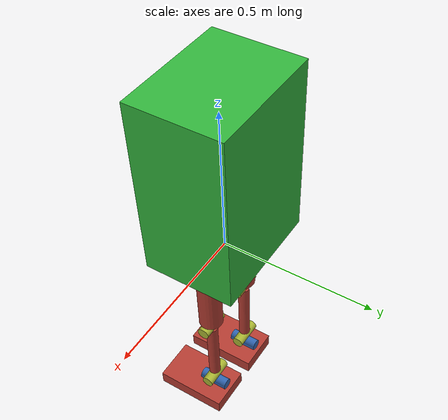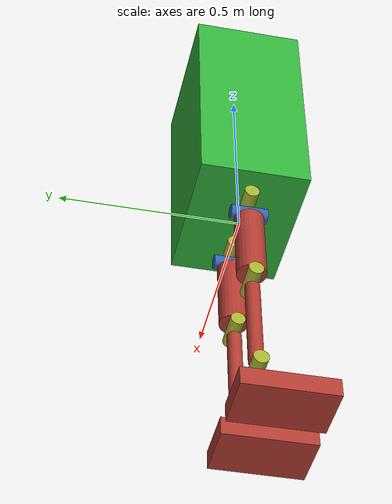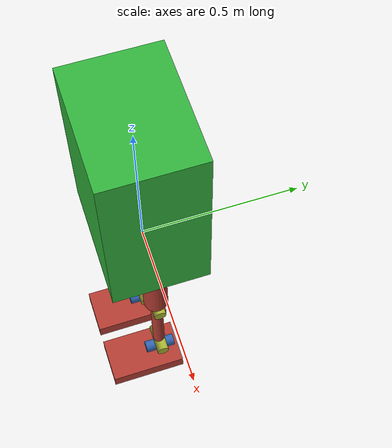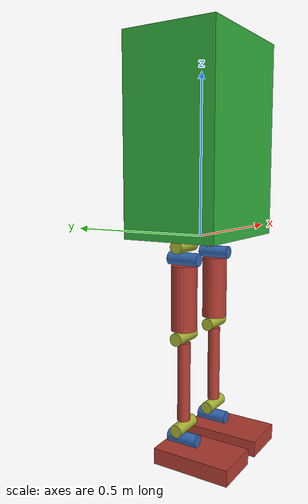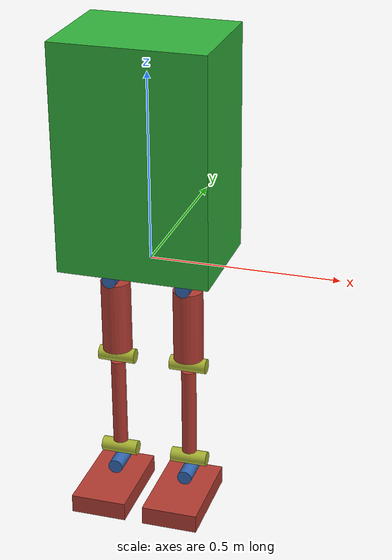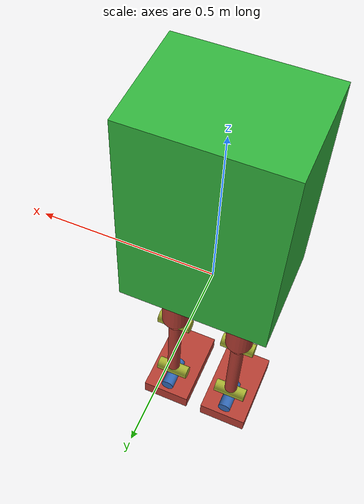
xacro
<?xml version="1.0"?>
<robot xmlns:xacro="http://www.ros.org/wiki/xacro" name="biped_test">

    <xacro:include filename="$(find biped_description)/urdf/materials.urdf.xacro"/>
    <xacro:include filename="$(find biped_description)/urdf/inertials.urdf.xacro"/>

    <!-- All variable xacro macros -->>

    <xacro:property name="rho_Fe" value="7874.0"/>

    <xacro:property name="body_w" value="0.40"/>
    <xacro:property name="body_d" value="0.30"/>
    <xacro:property name="body_h" value="0.60"/>

    <xacro:property name="leg_upper_r" value="0.04"/>
    <xacro:property name="leg_upper_l" value="0.20"/>

    <xacro:property name="leg_lower_r" value="0.02"/>
    <xacro:property name="leg_lower_l" value="0.25"/>

    <xacro:property name="foot_w" value="0.15"/>
    <xacro:property name="foot_d" value="0.25"/>
    <xacro:property name="foot_h" value="0.05"/>

    <xacro:property name="upper_leg_effort" value="6.5"/>
    <xacro:property name="upper_leg_velocity" value="10"/>
    <xacro:property name="lower_leg_effort" value="6.5"/>
    <xacro:property name="lower_leg_velocity" value="10"/>

    <xacro:property name="joint_cylinder_r" value="0.02"/>
    <xacro:property name="joint_cylinder_l" value="0.1"/>

    <!-- All derived xacro macros -->>
    <xacro:property name="body_z" value="${
        body_h/2 +
        leg_upper_l +
        leg_lower_l +
        foot_h
    }"/>

    <!-- All links and joints -->>

    <link name="base_link">
    </link>

    <link name="body">
        <xacro:square_inertial rho="${rho_Fe}" w="${body_w}" d="${body_d}" h="${body_h}"/>
        <visual>
            <geometry>
                <box size="${body_w} ${body_d} ${body_h}"/>
            </geometry>
            <origin rpy="0 0 0" xyz="0 0 ${body_h/2}"/>
            <material name="green"/>
        </visual>
        <collision>
            <geometry>
                <box size="${body_w} ${body_d} ${body_h}"/>
            </geometry>
            <origin rpy="0 0 0" xyz="0 0 ${body_h/2}"/>
        </collision>
    </link>

    <joint name="base_link_to_body" type="fixed">
        <parent link="base_link"/>
        <child link="body"/>
        <origin xyz="0 0 0"/>
    </joint>

    <link name="left_leg_upper_joint_x">
        <xacro:cylinder_inertial rho="${rho_Fe}" r="${joint_cylinder_r}" l="${joint_cylinder_l}"/>
        <visual>
            <geometry>
                <cylinder length="${joint_cylinder_l}" radius="${joint_cylinder_r}"/>
            </geometry>
            <origin xyz=" 0 0 -${joint_cylinder_r} " rpy="0 ${pi/2} 0"/>
            <material name="yellow"/>
        </visual>
        <collision>
            <geometry>
                <cylinder length="${joint_cylinder_l}" radius="${joint_cylinder_r}"/>
            </geometry>
            <origin xyz=" 0 0 -${joint_cylinder_r} " rpy="0 ${pi/2} 0"/>
        </collision>
    </link>

    <link name="right_leg_upper_joint_x">
    <xacro:cylinder_inertial rho="${rho_Fe}" r="${joint_cylinder_r}" l="${joint_cylinder_l}"/>
        <visual>
            <geometry>
                <cylinder length="${joint_cylinder_l}" radius="${joint_cylinder_r}"/>
            </geometry>
            <origin xyz="0 0 -${joint_cylinder_r}" rpy="0 ${pi/2} 0"/>
            <material name="yellow"/>
        </visual>
        <collision>
            <geometry>
                <cylinder length="${joint_cylinder_l}" radius="${joint_cylinder_r}"/>
            </geometry>
            <origin xyz="0 0 -${joint_cylinder_r}" rpy="0 ${pi/2} 0"/>
        </collision>
    </link>

    <joint name="body_to_left_leg_upper_joint_x" type="revolute">
        <parent link="body"/>
        <child link="left_leg_upper_joint_x"/>
        <origin xyz="${body_w/4} 0 0"/>

        <axis xyz="1 0 0"/>
        <limit upper="${pi/2}" lower="-${pi/2}" effort="${upper_leg_effort}" velocity="${upper_leg_velocity}"/>
    </joint>

    <joint name="body_to_right_leg_upper_joint_x" type="revolute">
        <parent link="body"/>
        <child link="right_leg_upper_joint_x"/>
        <origin xyz="-${body_w/4} 0 0"/>

        <axis xyz="1 0 0"/>
        <limit upper="${pi/2}" lower="-${pi/2}" effort="${upper_leg_effort}" velocity="${upper_leg_velocity}"/>
    </joint>

    <link name="left_leg_upper_joint_y">
        <xacro:cylinder_inertial rho="${rho_Fe}" r="${joint_cylinder_r}" l="${joint_cylinder_l}"/>
        <visual>
            <geometry>
                <cylinder length="${joint_cylinder_l}" radius="${joint_cylinder_r}"/>
            </geometry>
            <origin xyz="0 0 -${joint_cylinder_r}" rpy="0 ${pi/2} ${pi/2}"/>
            <material name="blue"/>
        </visual>
        <collision>
            <geometry>
                <cylinder length="${joint_cylinder_l}" radius="${joint_cylinder_r}"/>
            </geometry>
            <origin xyz="0 0 -${joint_cylinder_r}" rpy="0 ${pi/2} ${pi/2}"/>
        </collision>
    </link>

    <link name="right_leg_upper_joint_y">
        <xacro:cylinder_inertial rho="${rho_Fe}" r="${joint_cylinder_r}" l="${joint_cylinder_l}"/>
        <visual>
            <geometry>
                <cylinder length="${joint_cylinder_l}" radius="${joint_cylinder_r}"/>
            </geometry>
            <origin xyz="0 0 -${joint_cylinder_r}" rpy="0 ${pi/2} ${pi/2}"/>
            <material name="blue"/>
        </visual>
        <collision>
            <geometry>
                <cylinder length="${joint_cylinder_l}" radius="${joint_cylinder_r}"/>
            </geometry>
            <origin xyz="0 0 -${joint_cylinder_r}" rpy="0 ${pi/2} ${pi/2}"/>
        </collision>
    </link>

    <joint name="left_leg_upper_joint_x_to_left_leg_upper_joint_y" type="revolute">
        <parent link="left_leg_upper_joint_x"/>
        <child link="left_leg_upper_joint_y"/>
        <origin xyz="0 0 -${joint_cylinder_r*2}"/>

        <axis xyz="0 1 0"/>
        <limit upper="${pi/2}" lower="-${pi/2}" effort="${upper_leg_effort}" velocity="${upper_leg_velocity}"/>
    </joint>

    <joint name="right_leg_upper_joint_x_to_right_leg_upper_joint_y" type="revolute">
        <parent link="right_leg_upper_joint_x"/>
        <child link="right_leg_upper_joint_y"/>
        <origin xyz="0 0 -${joint_cylinder_r*2}"/>

        <axis xyz="0 1 0"/>
        <limit upper="${pi/2}" lower="-${pi/2}" effort="${upper_leg_effort}" velocity="${upper_leg_velocity}"/>
    </joint>

    <link name="left_leg_upper">
        <xacro:cylinder_inertial rho="${rho_Fe}" r="${leg_upper_r}" l="${leg_upper_l}"/>
        <visual>
            <geometry>
                <cylinder length="${leg_upper_l}" radius="${leg_upper_r}"/>
            </geometry>
            <origin xyz="0 0 -${leg_upper_l/2}"/>
            <material name="red"/>
        </visual>
        <collision>
            <geometry>
                <cylinder length="${leg_upper_l}" radius="${leg_upper_r}"/>
            </geometry>
            <origin xyz="0 0 -${leg_upper_l/2}"/>
        </collision>
    </link>

    <link name="right_leg_upper">
        <xacro:cylinder_inertial rho="${rho_Fe}" r="${leg_upper_r}" l="${leg_upper_l}"/>
        <visual>
            <geometry>
                <cylinder length="${leg_upper_l}" radius="${leg_upper_r}"/>
            </geometry>
            <origin xyz="0 0 -${leg_upper_l/2}"/>
            <material name="red"/>
        </visual>
        <collision>
            <geometry>
                <cylinder length="${leg_upper_l}" radius="${leg_upper_r}"/>
            </geometry>
            <origin xyz="0 0 -${leg_upper_l/2}"/>
        </collision>
    </link>

    <joint name="left_leg_upper_joint_y_to_left_leg_upper" type="fixed">
        <parent link="left_leg_upper_joint_y"/>
        <child link="left_leg_upper"/>
        <origin xyz="0 0 -${joint_cylinder_r*2}"/>
    </joint>

    <joint name="right_leg_upper_joint_y_to_right_leg_upper" type="fixed">
        <parent link="right_leg_upper_joint_y"/>
        <child link="right_leg_upper"/>
        <origin xyz="0 0 -${joint_cylinder_r*2}"/>
    </joint>

    <link name="left_leg_knee_x">
        <xacro:cylinder_inertial rho="${rho_Fe}" r="${joint_cylinder_r}" l="${joint_cylinder_l}"/>
        <visual>
            <geometry>
                <cylinder length="${joint_cylinder_l}" radius="${joint_cylinder_r}"/>
            </geometry>
            <origin xyz="0 0 -${joint_cylinder_r}" rpy="0 ${pi/2} 0"/>
            <material name="yellow"/>
        </visual>
        <collision>
            <geometry>
                <cylinder length="${joint_cylinder_l}" radius="${joint_cylinder_r}"/>
            </geometry>
            <origin xyz="0 0 -${joint_cylinder_r}" rpy="0 ${pi/2} 0"/>
        </collision>
    </link>

    <link name="right_leg_knee_x">
        <xacro:cylinder_inertial rho="${rho_Fe}" r="${joint_cylinder_r}" l="${joint_cylinder_l}"/>
        <visual>
            <geometry>
                <cylinder length="${joint_cylinder_l}" radius="${joint_cylinder_r}"/>
            </geometry>
            <origin xyz="0 0 -${joint_cylinder_r}" rpy="0 ${pi/2} 0"/>
            <material name="yellow"/>
        </visual>
        <collision>
            <geometry>
                <cylinder length="${joint_cylinder_l}" radius="${joint_cylinder_r}"/>
            </geometry>
            <origin xyz="0 0 -${joint_cylinder_r}" rpy="0 ${pi/2} 0"/>
        </collision>
    </link>

    <joint name="left_leg_upper_to_left_leg_knee_x" type="revolute">
        <parent link="left_leg_upper"/>
        <child link="left_leg_knee_x"/>
        <origin xyz="0 0 -${leg_upper_l}"/>

        <axis xyz="1 0 0"/>
        <limit upper="${pi/2}" lower="0" effort="${lower_leg_effort}" velocity="${lower_leg_velocity}"/>
    </joint>

    <joint name="right_leg_upper_to_right_knee_x" type="revolute">
        <parent link="right_leg_upper"/>
        <child link="right_leg_knee_x"/>
        <origin xyz="0 0 -${leg_upper_l}"/>

        <axis xyz="1 0 0"/>
        <limit upper="${pi/2}" lower="0" effort="${lower_leg_effort}" velocity="${lower_leg_velocity}"/>
    </joint>

    <link name="left_leg_lower">
        <xacro:cylinder_inertial rho="${rho_Fe}" r="${leg_lower_r}" l="${leg_lower_l}"/>
        <visual>
            <geometry>
                <cylinder length="${leg_lower_l}" radius="${leg_lower_r}"/>
            </geometry>
            <origin xyz="0 0 -${leg_lower_l/2}"/>
            <material name="red"/>
        </visual>
        <collision>
            <geometry>
                <cylinder length="${leg_lower_l}" radius="${leg_lower_r}"/>
            </geometry>
            <origin xyz="0 0 -${leg_lower_l/2}"/>
        </collision>
    </link>

    <link name="right_leg_lower">
        <xacro:cylinder_inertial rho="${rho_Fe}" r="${leg_lower_r}" l="${leg_lower_l}"/>
        <visual>
            <geometry>
                <cylinder length="${leg_lower_l}" radius="${leg_lower_r}"/>
            </geometry>
            <origin xyz="0 0 -${leg_lower_l/2}"/>
            <material name="red"/>
        </visual>
        <collision>
            <geometry>
                <cylinder length="${leg_lower_l}" radius="${leg_lower_r}"/>
            </geometry>
            <origin xyz="0 0 -${leg_lower_l/2}"/>
        </collision>
    </link>

    <joint name="left_leg_knee_x_to_left_leg_lower" type="fixed">
        <parent link="left_leg_knee_x"/>
        <child link="left_leg_lower"/>
        <origin xyz="0 0 -${joint_cylinder_r*2}"/>
    </joint>

    <joint name="right_leg_knee_x_to_right_leg_lower" type="fixed">
        <parent link="right_leg_knee_x"/>
        <child link="right_leg_lower"/>
        <origin xyz="0 0 -${joint_cylinder_r*2}"/>
    </joint>

    <link name="left_leg_lower_joint_x">
        <xacro:cylinder_inertial rho="${rho_Fe}" r="${joint_cylinder_r}" l="${joint_cylinder_l}"/>
        <visual>
            <geometry>
                <cylinder length="${joint_cylinder_l}" radius="${joint_cylinder_r}"/>
            </geometry>
            <origin xyz=" 0 0 -${joint_cylinder_r} " rpy="0 ${pi/2} 0"/>
            <material name="yellow"/>
        </visual>
        <collision>
            <geometry>
                <cylinder length="${joint_cylinder_l}" radius="${joint_cylinder_r}"/>
            </geometry>
            <origin xyz=" 0 0 -${joint_cylinder_r} " rpy="0 ${pi/2} 0"/>
        </collision>
    </link>

    <link name="right_leg_lower_joint_x">
        <xacro:cylinder_inertial rho="${rho_Fe}" r="${joint_cylinder_r}" l="${joint_cylinder_l}"/>
        <visual>
            <geometry>
                <cylinder length="${joint_cylinder_l}" radius="${joint_cylinder_r}"/>
            </geometry>
            <origin xyz="0 0 -${joint_cylinder_r}" rpy="0 ${pi/2} 0"/>
            <material name="yellow"/>
        </visual>
        <collision>
            <geometry>
                <cylinder length="${joint_cylinder_l}" radius="${joint_cylinder_r}"/>
            </geometry>
            <origin xyz=" 0 0 -${joint_cylinder_r} " rpy="0 ${pi/2} 0"/>
        </collision>
    </link>

    <joint name="left_leg_lower_to_left_leg_lower_joint_x" type="revolute">
        <parent link="left_leg_lower"/>
        <child link="left_leg_lower_joint_x"/>
        <origin xyz="0 0 -${leg_lower_l}"/>

        <axis xyz="1 0 0"/>
        <limit upper="${pi/2}" lower="-${pi/2}" effort="${lower_leg_effort}" velocity="${lower_leg_velocity}"/>
    </joint>

    <joint name="right_leg_lower_to_right_leg_lower_joint_x" type="revolute">
        <parent link="right_leg_lower"/>
        <child link="right_leg_lower_joint_x"/>
        <origin xyz="0 0 -${leg_lower_l}"/>

        <axis xyz="1 0 0"/>
        <limit upper="${pi/2}" lower="-${pi/2}" effort="${lower_leg_effort}" velocity="${lower_leg_velocity}"/>
    </joint>

    <link name="left_leg_lower_joint_y">
        <xacro:cylinder_inertial rho="${rho_Fe}" r="${joint_cylinder_r}" l="${joint_cylinder_l}"/>
        <visual>
            <geometry>
                <cylinder length="${joint_cylinder_l}" radius="${joint_cylinder_r}"/>
            </geometry>
            <origin xyz="0 0 -${joint_cylinder_r}" rpy="0 ${pi/2} ${pi/2}"/>
            <material name="blue"/>
        </visual>
        <collision>
            <geometry>
                <cylinder length="${joint_cylinder_l}" radius="${joint_cylinder_r}"/>
            </geometry>
            <origin xyz=" 0 0 -${joint_cylinder_r} " rpy="0 ${pi/2} 0"/>
        </collision>
    </link>

    <link name="right_leg_lower_joint_y">
        <xacro:cylinder_inertial rho="${rho_Fe}" r="${joint_cylinder_r}" l="${joint_cylinder_l}"/>
        <visual>
            <geometry>
                <cylinder length="${joint_cylinder_l}" radius="${joint_cylinder_r}"/>
            </geometry>
            <origin xyz="0 0 -${joint_cylinder_r}" rpy="0 ${pi/2} ${pi/2}"/>
            <material name="blue"/>
        </visual>
        <collision>
            <geometry>
                <cylinder length="${joint_cylinder_l}" radius="${joint_cylinder_r}"/>
            </geometry>
            <origin xyz="0 0 -${joint_cylinder_r}" rpy="0 ${pi/2} ${pi/2}"/>
        </collision>
    </link>

    <joint name="left_leg_lower_joint_x_to_left_leg_lower_joint_y" type="revolute">
        <parent link="left_leg_lower_joint_x"/>
        <child link="left_leg_lower_joint_y"/>
        <origin xyz="0 0 -${joint_cylinder_r*2}"/>

        <axis xyz="0 1 0"/>
        <limit upper="${pi/2}" lower="-${pi/2}" effort="${lower_leg_effort}" velocity="${lower_leg_velocity}"/>
    </joint>

    <joint name="right_leg_lower_joint_x_to_right_leg_lower_joint_y" type="revolute">
        <parent link="right_leg_lower_joint_x"/>
        <child link="right_leg_lower_joint_y"/>
        <origin xyz="0 0 -${joint_cylinder_r*2}"/>

        <axis xyz="0 1 0"/>
        <limit upper="${pi/2}" lower="-${pi/2}" effort="${lower_leg_effort}" velocity="${lower_leg_velocity}"/>
    </joint>

    <link name="left_foot">
        <xacro:square_inertial rho="${rho_Fe}" w="${foot_w}" d="${foot_d}" h="${foot_h}"/>
        <visual>
            <geometry>
                <box size="${foot_w} ${foot_d} ${foot_h}"/>
            </geometry>
            <origin xyz="0 -${foot_d/4} -${foot_h/2}"/>
            <material name="red"/>
        </visual>
        <collision>
            <geometry>
                <box size="${foot_w} ${foot_d} ${foot_h}"/>
            </geometry>
            <origin xyz="0 -${foot_d/4} -${foot_h/2}"/>
        </collision>
    </link>

    <link name="right_foot">
        <xacro:square_inertial rho="${rho_Fe}" w="${foot_w}" d="${foot_d}" h="${foot_h}"/>
        <visual>
            <geometry>
                <box size="${foot_w} ${foot_d} ${foot_h}"/>
            </geometry>
            <origin xyz="0 -${foot_d/4} -${foot_h/2}"/>
            <material name="red"/>
        </visual>
        <collision>
            <geometry>
                <box size="${foot_w} ${foot_d} ${foot_h}"/>
            </geometry>
            <origin xyz="0 -${foot_d/4} -${foot_h/2}"/>
        </collision>
    </link>

    <joint name="left_leg_lower_joint_y_to_left_foot" type="fixed">
    <parent link="left_leg_lower_joint_y"/>
        <child link="left_foot"/>
        <origin xyz="0 0 -${joint_cylinder_r*2}"/>
    </joint>

    <joint name="right_leg_lower_joint_y_to_right_foot" type="fixed">
    <parent link="right_leg_lower_joint_y"/>
        <child link="right_foot"/>
        <origin xyz="0 0 -${joint_cylinder_r*2}"/>
    </joint>

    <!-- Transmissions -->>

    <transmission name="left_foot_pitch_trans">
    <type>transmission_interface/SimpleTransmission</type>
    <actuator name="$foot_pitch_motor">
      <mechanicalReduction>1</mechanicalReduction>
    </actuator>
    <joint name="left_leg_lower_joint_x_to_left_leg_lower_joint_y">
      <hardwareInterface>hardware_interface/PositionJointInterface</hardwareInterface>
    </joint>
  </transmission>

    <!-- Gazebo plugin for ROS Control -->
    <gazebo>
        <plugin name="gazebo_ros_control" filename="libgazebo_ros_control.so">
            <robotNamespace>/</robotNamespace>
        </plugin>
    </gazebo>

</robot>

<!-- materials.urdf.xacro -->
<robot>

    <material name="blue">
        <color rgba="${71/360} ${147/360} ${255/360} 1.0"/>
    </material>

    <material name="green">
        <color rgba="${71/360} ${255/360} ${86/360} 1.0"/>
    </material>

    <material name="grey">
        <color rgba="0.7 0.7 0.7 1.0"/>
    </material>

    <material name="grey2">
        <color rgba="0.9 0.9 0.9 1.0"/>
    </material>

    <material name="yellow">
        <color rgba="${239/360} ${255/360} ${71/360} 1.0"/>
    </material>

    <material name="red">
        <color rgba="${255/360} ${86/360} ${71/360} 1.0"/>
    </material>

    <material name="white">
        <color rgba="1.0 1.0 1.0 1.0"/>
    </material>

    <material name="black">
        <color rgba="0 0 0 1.0"/>
    </material>

</robot>

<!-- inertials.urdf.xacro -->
<robot xmlns:xacro="http://www.ros.org/wiki/xacro">

    <xacro:macro name="cylinder_inertial" params="rho r l">
        <inertial>
            <mass value="${rho*(pi*r*r*l)}"/>
            <inertia
                ixx="${1/12*rho*(pi*r*r*l)*l*l + 1/4*rho*(pi*r*r*l)*r*r}"
                ixy="0" ixz="0"
                iyy="${1/12*rho*(pi*r*r*l)*l*l + 1/4*rho*(pi*r*r*l)*r*r}"
                iyz="0"
                izz="${rho*(pi*r*r*l)*1/2*r*r}"
            />
        </inertial>
    </xacro:macro>

    <xacro:macro name="square_inertial" params="rho w d h">
        <inertial>
            <mass value="${rho*(w*d*h)}"/>
            <inertia
                ixx="${1/12*rho*(w*d*h)*(h*h + d*d)}"
                ixy="0" ixz="0"
                iyy="${1/12*rho*(w*d*h)*(w*w + d*d)}"
                iyz="0"
                izz="${1/12*rho*(w*d*h)*(w*w + h*h)}"
            />
        </inertial>
    </xacro:macro>

</robot>
